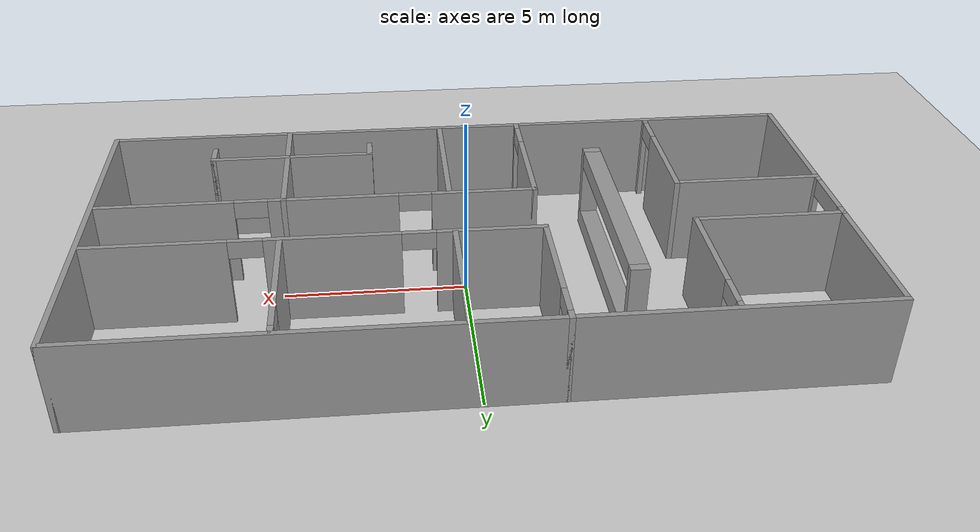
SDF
<sdf version="1.7">
 <world name="default">
  <light name="sun" type="directional">
   <pose>0 0 10 0 -0 0</pose>
   <diffuse>0.8 0.8 0.8 1</diffuse>
   <specular>0.2 0.2 0.2 1</specular>
   <attenuation>
    <range>1000</range>
    <constant>0.9</constant>
    <linear>0.01</linear>
    <quadratic>0.001</quadratic>
   </attenuation>
   <direction>-0.5 0.1 -0.9</direction>
   <spot><inner_angle>0</inner_angle><outer_angle>0</outer_angle><falloff>0</falloff></spot>
  </light>
  <model name="ground_plane">
   <static>1</static>
   <link name="link">
    <collision name="collision">
     <geometry><plane><normal>0 0 1</normal><size>100 100</size></plane></geometry>
     <surface>
      <contact><collide_bitmask>65535</collide_bitmask></contact>
      <friction><ode><mu>100</mu><mu2>50</mu2></ode></friction>
     </surface>
    </collision>
    <visual name="visual">
     <cast_shadows>0</cast_shadows>
     <geometry><plane><normal>0 0 1</normal><size>100 100</size></plane></geometry>
     <material>
      <script><uri>file://media/materials/scripts/gazebo.material</uri><name>Gazebo/Grey</name></script>
     </material>
    </visual>
   </link>
  </model>
  <gravity>0 0 -9.8</gravity>
  <magnetic_field>6e-06 2.3e-05 -4.2e-05</magnetic_field>
  <atmosphere type="adiabatic"/>
  <physics type="ode">
   <max_step_size>0.001</max_step_size>
   <real_time_factor>1</real_time_factor>
   <real_time_update_rate>1000</real_time_update_rate>
  </physics>
  <scene><ambient>0.4 0.4 0.4 1</ambient><background>0.7 0.7 0.7 1</background><shadows>1</shadows></scene>
  <spherical_coordinates>
   <surface_model>EARTH_WGS84</surface_model>
   <latitude_deg>0</latitude_deg>
   <longitude_deg>0</longitude_deg>
   <elevation>0</elevation>
   <heading_deg>0</heading_deg>
  </spherical_coordinates>
  <model name="Office">
   <link name="Wall_13">
    <collision name="Wall_13_Collision">
     <geometry><box><size>20.15 0.15 2.5</size></box></geometry>
     <pose>0 0 1.25 0 -0 0</pose>
    </collision>
    <visual name="Wall_13_Visual">
     <pose>0 0 1.25 0 -0 0</pose>
     <geometry><box><size>20.15 0.15 2.5</size></box></geometry>
     <material>
      <script><uri>file://media/materials/scripts/gazebo.material</uri><name>Gazebo/Grey</name></script>
      <ambient>1 1 1 1</ambient>
     </material>
     <meta><layer>0</layer></meta>
    </visual>
    <pose>0 5 0 0 -0 0</pose>
   </link>
   <link name="Wall_14">
    <collision name="Wall_14_Collision">
     <geometry><box><size>10.15 0.15 2.5</size></box></geometry>
     <pose>0 0 1.25 0 -0 0</pose>
    </collision>
    <visual name="Wall_14_Visual">
     <pose>0 0 1.25 0 -0 0</pose>
     <geometry><box><size>10.15 0.15 2.5</size></box></geometry>
     <material>
      <script><uri>file://media/materials/scripts/gazebo.material</uri><name>Gazebo/Grey</name></script>
      <ambient>1 1 1 1</ambient>
     </material>
     <meta><layer>0</layer></meta>
    </visual>
    <pose>10 0 0 0 -0 -1.5708</pose>
   </link>
   <link name="Wall_15">
    <collision name="Wall_15_Collision">
     <geometry><box><size>20.15 0.15 2.5</size></box></geometry>
     <pose>0 0 1.25 0 -0 0</pose>
    </collision>
    <visual name="Wall_15_Visual">
     <pose>0 0 1.25 0 -0 0</pose>
     <geometry><box><size>20.15 0.15 2.5</size></box></geometry>
     <material>
      <script><uri>file://media/materials/scripts/gazebo.material</uri><name>Gazebo/Grey</name></script>
      <ambient>1 1 1 1</ambient>
     </material>
     <meta><layer>0</layer></meta>
    </visual>
    <pose>0 -5 0 0 -0 3.14159</pose>
   </link>
   <link name="Wall_16">
    <pose>-10 -0.075 0 0 -0 1.5708</pose>
    <visual name="Wall_16_Visual_0">
     <pose>-2.8375 0 1.25 0 -0 0</pose>
     <geometry><box><size>4.325 0.15 2.5</size></box></geometry>
     <material>
      <script><uri>file://media/materials/scripts/gazebo.material</uri><name>Gazebo/Grey</name></script>
      <ambient>1 1 1 1</ambient>
     </material>
     <meta><layer>0</layer></meta>
    </visual>
    <collision name="Wall_16_Collision_0">
     <geometry><box><size>4.325 0.15 2.5</size></box></geometry>
     <pose>-2.8375 0 1.25 0 -0 0</pose>
    </collision>
    <visual name="Wall_16_Visual_1">
     <pose>2.9125 0 1.25 0 -0 0</pose>
     <geometry><box><size>4.175 0.15 2.5</size></box></geometry>
     <material>
      <script><uri>file://media/materials/scripts/gazebo.material</uri><name>Gazebo/Grey</name></script>
      <ambient>1 1 1 1</ambient>
     </material>
     <meta><layer>0</layer></meta>
    </visual>
    <collision name="Wall_16_Collision_1">
     <geometry><box><size>4.175 0.15 2.5</size></box></geometry>
     <pose>2.9125 0 1.25 0 -0 0</pose>
    </collision>
    <visual name="Wall_16_Visual_2">
     <pose>0.075 0 2.25 0 -0 0</pose>
     <geometry><box><size>1.5 0.15 0.5</size></box></geometry>
     <material>
      <script><uri>file://media/materials/scripts/gazebo.material</uri><name>Gazebo/Grey</name></script>
      <ambient>1 1 1 1</ambient>
     </material>
     <meta><layer>0</layer></meta>
    </visual>
    <collision name="Wall_16_Collision_2">
     <geometry><box><size>1.5 0.15 0.5</size></box></geometry>
     <pose>0.075 0 2.25 0 -0 0</pose>
    </collision>
   </link>
   <link name="Wall_18">
    <collision name="Wall_18_Collision">
     <geometry><box><size>4.15 0.15 2.5</size></box></geometry>
     <pose>0 0 1.25 0 -0 0</pose>
    </collision>
    <visual name="Wall_18_Visual">
     <pose>0 0 1.25 0 -0 0</pose>
     <geometry><box><size>4.15 0.15 2.5</size></box></geometry>
     <material>
      <script><uri>file://media/materials/scripts/gazebo.material</uri><name>Gazebo/Grey</name></script>
      <ambient>1 1 1 1</ambient>
     </material>
     <meta><layer>0</layer></meta>
    </visual>
    <pose>-8 1 0 0 -0 0</pose>
   </link>
   <link name="Wall_19">
    <pose>-6 2.925 0 0 -0 1.5708</pose>
    <visual name="Wall_19_Visual_0">
     <pose>-0.5375 0 1.25 0 -0 0</pose>
     <geometry><box><size>2.925 0.15 2.5</size></box></geometry>
     <material>
      <script><uri>file://media/materials/scripts/gazebo.material</uri><name>Gazebo/Grey</name></script>
      <ambient>1 1 1 1</ambient>
     </material>
     <meta><layer>0</layer></meta>
    </visual>
    <collision name="Wall_19_Collision_0">
     <geometry><box><size>2.925 0.15 2.5</size></box></geometry>
     <pose>-0.5375 0 1.25 0 -0 0</pose>
    </collision>
    <visual name="Wall_19_Visual_1">
     <pose>1.9125 0 1.25 0 -0 0</pose>
     <geometry><box><size>0.175 0.15 2.5</size></box></geometry>
     <material>
      <script><uri>file://media/materials/scripts/gazebo.material</uri><name>Gazebo/Grey</name></script>
      <ambient>1 1 1 1</ambient>
     </material>
     <meta><layer>0</layer></meta>
    </visual>
    <collision name="Wall_19_Collision_1">
     <geometry><box><size>0.175 0.15 2.5</size></box></geometry>
     <pose>1.9125 0 1.25 0 -0 0</pose>
    </collision>
    <visual name="Wall_19_Visual_2">
     <pose>1.375 0 2.25 0 -0 0</pose>
     <geometry><box><size>0.9 0.15 0.5</size></box></geometry>
     <material>
      <script><uri>file://media/materials/scripts/gazebo.material</uri><name>Gazebo/Grey</name></script>
      <ambient>1 1 1 1</ambient>
     </material>
     <meta><layer>0</layer></meta>
    </visual>
    <collision name="Wall_19_Collision_2">
     <geometry><box><size>0.9 0.15 0.5</size></box></geometry>
     <pose>1.375 0 2.25 0 -0 0</pose>
    </collision>
   </link>
   <link name="Wall_21">
    <collision name="Wall_21_Collision">
     <geometry><box><size>4.15 0.15 2.5</size></box></geometry>
     <pose>0 0 1.25 0 -0 0</pose>
    </collision>
    <visual name="Wall_21_Visual">
     <pose>0 0 1.25 0 -0 0</pose>
     <geometry><box><size>4.15 0.15 2.5</size></box></geometry>
     <material>
      <script><uri>file://media/materials/scripts/gazebo.material</uri><name>Gazebo/Grey</name></script>
      <ambient>1 1 1 1</ambient>
     </material>
     <meta><layer>0</layer></meta>
    </visual>
    <pose>-8 -1 0 0 -0 0</pose>
   </link>
   <link name="Wall_22">
    <pose>-6 -2.925 0 0 -0 -1.5708</pose>
    <visual name="Wall_22_Visual_0">
     <pose>-0.539066 0 1.25 0 -0 0</pose>
     <geometry><box><size>2.92187 0.15 2.5</size></box></geometry>
     <material>
      <script><uri>file://media/materials/scripts/gazebo.material</uri><name>Gazebo/Grey</name></script>
      <ambient>1 1 1 1</ambient>
     </material>
     <meta><layer>0</layer></meta>
    </visual>
    <collision name="Wall_22_Collision_0">
     <geometry><box><size>2.92187 0.15 2.5</size></box></geometry>
     <pose>-0.539066 0 1.25 0 -0 0</pose>
    </collision>
    <visual name="Wall_22_Visual_1">
     <pose>1.91093 0 1.25 0 -0 0</pose>
     <geometry><box><size>0.178131 0.15 2.5</size></box></geometry>
     <material>
      <script><uri>file://media/materials/scripts/gazebo.material</uri><name>Gazebo/Grey</name></script>
      <ambient>1 1 1 1</ambient>
     </material>
     <meta><layer>0</layer></meta>
    </visual>
    <collision name="Wall_22_Collision_1">
     <geometry><box><size>0.178131 0.15 2.5</size></box></geometry>
     <pose>1.91093 0 1.25 0 -0 0</pose>
    </collision>
    <visual name="Wall_22_Visual_2">
     <pose>1.37187 0 2.25 0 -0 0</pose>
     <geometry><box><size>0.9 0.15 0.5</size></box></geometry>
     <material>
      <script><uri>file://media/materials/scripts/gazebo.material</uri><name>Gazebo/Grey</name></script>
      <ambient>1 1 1 1</ambient>
     </material>
     <meta><layer>0</layer></meta>
    </visual>
    <collision name="Wall_22_Collision_2">
     <geometry><box><size>0.9 0.15 0.5</size></box></geometry>
     <pose>1.37187 0 2.25 0 -0 0</pose>
    </collision>
   </link>
   <link name="Wall_24">
    <pose>-4 0 0 0 -0 -1.5708</pose>
    <visual name="Wall_24_Visual_0">
     <pose>-3.125 0 1.25 0 -0 0</pose>
     <geometry><box><size>0.25 0.5 2.5</size></box></geometry>
     <material>
      <script><uri>file://media/materials/scripts/gazebo.material</uri><name>Gazebo/Grey</name></script>
      <ambient>1 1 1 1</ambient>
     </material>
     <meta><layer>0</layer></meta>
    </visual>
    <collision name="Wall_24_Collision_0">
     <geometry><box><size>0.25 0.5 2.5</size></box></geometry>
     <pose>-3.125 0 1.25 0 -0 0</pose>
    </collision>
    <visual name="Wall_24_Visual_1">
     <pose>0.125 0 0.25 0 -0 0</pose>
     <geometry><box><size>6.25 0.5 0.5</size></box></geometry>
     <material>
      <script><uri>file://media/materials/scripts/gazebo.material</uri><name>Gazebo/Grey</name></script>
      <ambient>1 1 1 1</ambient>
     </material>
     <meta><layer>0</layer></meta>
    </visual>
    <collision name="Wall_24_Collision_1">
     <geometry><box><size>6.25 0.5 0.5</size></box></geometry>
     <pose>0.125 0 0.25 0 -0 0</pose>
    </collision>
    <visual name="Wall_24_Visual_2">
     <pose>3.125 0 1.5 0 -0 0</pose>
     <geometry><box><size>0.25 0.5 2</size></box></geometry>
     <material>
      <script><uri>file://media/materials/scripts/gazebo.material</uri><name>Gazebo/Grey</name></script>
      <ambient>1 1 1 1</ambient>
     </material>
     <meta><layer>0</layer></meta>
    </visual>
    <collision name="Wall_24_Collision_2">
     <geometry><box><size>0.25 0.5 2</size></box></geometry>
     <pose>3.125 0 1.5 0 -0 0</pose>
    </collision>
    <visual name="Wall_24_Visual_3">
     <pose>0 0 2.25 0 -0 0</pose>
     <geometry><box><size>6 0.5 0.5</size></box></geometry>
     <material>
      <script><uri>file://media/materials/scripts/gazebo.material</uri><name>Gazebo/Grey</name></script>
      <ambient>1 1 1 1</ambient>
     </material>
     <meta><layer>0</layer></meta>
    </visual>
    <collision name="Wall_24_Collision_3">
     <geometry><box><size>6 0.5 0.5</size></box></geometry>
     <pose>0 0 2.25 0 -0 0</pose>
    </collision>
   </link>
   <link name="Wall_29">
    <pose>-2 3 0 0 -0 -1.5708</pose>
    <visual name="Wall_29_Visual_0">
     <pose>-1.9125 0 1.25 0 -0 0</pose>
     <geometry><box><size>0.325 0.15 2.5</size></box></geometry>
     <material>
      <script><uri>file://media/materials/scripts/gazebo.material</uri><name>Gazebo/Grey</name></script>
      <ambient>1 1 1 1</ambient>
     </material>
     <meta><layer>0</layer></meta>
    </visual>
    <collision name="Wall_29_Collision_0">
     <geometry><box><size>0.325 0.15 2.5</size></box></geometry>
     <pose>-1.9125 0 1.25 0 -0 0</pose>
    </collision>
    <visual name="Wall_29_Visual_1">
     <pose>0.6125 0 1.25 0 -0 0</pose>
     <geometry><box><size>2.925 0.15 2.5</size></box></geometry>
     <material>
      <script><uri>file://media/materials/scripts/gazebo.material</uri><name>Gazebo/Grey</name></script>
      <ambient>1 1 1 1</ambient>
     </material>
     <meta><layer>0</layer></meta>
    </visual>
    <collision name="Wall_29_Collision_1">
     <geometry><box><size>2.925 0.15 2.5</size></box></geometry>
     <pose>0.6125 0 1.25 0 -0 0</pose>
    </collision>
    <visual name="Wall_29_Visual_2">
     <pose>-1.3 0 2.25 0 -0 0</pose>
     <geometry><box><size>0.9 0.15 0.5</size></box></geometry>
     <material>
      <script><uri>file://media/materials/scripts/gazebo.material</uri><name>Gazebo/Grey</name></script>
      <ambient>1 1 1 1</ambient>
     </material>
     <meta><layer>0</layer></meta>
    </visual>
    <collision name="Wall_29_Collision_2">
     <geometry><box><size>0.9 0.15 0.5</size></box></geometry>
     <pose>-1.3 0 2.25 0 -0 0</pose>
    </collision>
   </link>
   <link name="Wall_30">
    <pose>3.925 1 0 0 -0 0</pose>
    <visual name="Wall_30_Visual_0">
     <pose>-4.5375 0 1.25 0 -0 0</pose>
     <geometry><box><size>2.925 0.15 2.5</size></box></geometry>
     <material>
      <script><uri>file://media/materials/scripts/gazebo.material</uri><name>Gazebo/Grey</name></script>
      <ambient>1 1 1 1</ambient>
     </material>
     <meta><layer>0</layer></meta>
    </visual>
    <collision name="Wall_30_Collision_0">
     <geometry><box><size>2.925 0.15 2.5</size></box></geometry>
     <pose>-4.5375 0 1.25 0 -0 0</pose>
    </collision>
    <visual name="Wall_30_Visual_1">
     <pose>-0.401223 0 1.25 0 -0 0</pose>
     <geometry><box><size>3.54755 0.15 2.5</size></box></geometry>
     <material>
      <script><uri>file://media/materials/scripts/gazebo.material</uri><name>Gazebo/Grey</name></script>
      <ambient>1 1 1 1</ambient>
     </material>
     <meta><layer>0</layer></meta>
    </visual>
    <collision name="Wall_30_Collision_1">
     <geometry><box><size>3.54755 0.15 2.5</size></box></geometry>
     <pose>-0.401223 0 1.25 0 -0 0</pose>
    </collision>
    <visual name="Wall_30_Visual_2">
     <pose>4.13628 0 1.25 0 -0 0</pose>
     <geometry><box><size>3.72745 0.15 2.5</size></box></geometry>
     <material>
      <script><uri>file://media/materials/scripts/gazebo.material</uri><name>Gazebo/Grey</name></script>
      <ambient>1 1 1 1</ambient>
     </material>
     <meta><layer>0</layer></meta>
    </visual>
    <collision name="Wall_30_Collision_2">
     <geometry><box><size>3.72745 0.15 2.5</size></box></geometry>
     <pose>4.13628 0 1.25 0 -0 0</pose>
    </collision>
    <visual name="Wall_30_Visual_3">
     <pose>-2.625 0 2.25 0 -0 0</pose>
     <geometry><box><size>0.9 0.15 0.5</size></box></geometry>
     <material>
      <script><uri>file://media/materials/scripts/gazebo.material</uri><name>Gazebo/Grey</name></script>
      <ambient>1 1 1 1</ambient>
     </material>
     <meta><layer>0</layer></meta>
    </visual>
    <collision name="Wall_30_Collision_3">
     <geometry><box><size>0.9 0.15 0.5</size></box></geometry>
     <pose>-2.625 0 2.25 0 -0 0</pose>
    </collision>
    <visual name="Wall_30_Visual_4">
     <pose>1.82255 0 2.25 0 -0 0</pose>
     <geometry><box><size>0.9 0.15 0.5</size></box></geometry>
     <material>
      <script><uri>file://media/materials/scripts/gazebo.material</uri><name>Gazebo/Grey</name></script>
      <ambient>1 1 1 1</ambient>
     </material>
     <meta><layer>0</layer></meta>
    </visual>
    <collision name="Wall_30_Collision_4">
     <geometry><box><size>0.9 0.15 0.5</size></box></geometry>
     <pose>1.82255 0 2.25 0 -0 0</pose>
    </collision>
   </link>
   <link name="Wall_32">
    <pose>-2 -3 0 0 -0 1.5708</pose>
    <visual name="Wall_32_Visual_0">
     <pose>-1.9125 0 1.25 0 -0 0</pose>
     <geometry><box><size>0.325 0.15 2.5</size></box></geometry>
     <material>
      <script><uri>file://media/materials/scripts/gazebo.material</uri><name>Gazebo/Grey</name></script>
      <ambient>1 1 1 1</ambient>
     </material>
     <meta><layer>0</layer></meta>
    </visual>
    <collision name="Wall_32_Collision_0">
     <geometry><box><size>0.325 0.15 2.5</size></box></geometry>
     <pose>-1.9125 0 1.25 0 -0 0</pose>
    </collision>
    <visual name="Wall_32_Visual_1">
     <pose>0.6125 0 1.25 0 -0 0</pose>
     <geometry><box><size>2.925 0.15 2.5</size></box></geometry>
     <material>
      <script><uri>file://media/materials/scripts/gazebo.material</uri><name>Gazebo/Grey</name></script>
      <ambient>1 1 1 1</ambient>
     </material>
     <meta><layer>0</layer></meta>
    </visual>
    <collision name="Wall_32_Collision_1">
     <geometry><box><size>2.925 0.15 2.5</size></box></geometry>
     <pose>0.6125 0 1.25 0 -0 0</pose>
    </collision>
    <visual name="Wall_32_Visual_2">
     <pose>-1.3 0 2.25 0 -0 0</pose>
     <geometry><box><size>0.9 0.15 0.5</size></box></geometry>
     <material>
      <script><uri>file://media/materials/scripts/gazebo.material</uri><name>Gazebo/Grey</name></script>
      <ambient>1 1 1 1</ambient>
     </material>
     <meta><layer>0</layer></meta>
    </visual>
    <collision name="Wall_32_Collision_2">
     <geometry><box><size>0.9 0.15 0.5</size></box></geometry>
     <pose>-1.3 0 2.25 0 -0 0</pose>
    </collision>
   </link>
   <link name="Wall_33">
    <pose>3.925 -1 0 0 -0 0</pose>
    <visual name="Wall_33_Visual_0">
     <pose>-4.5375 0 1.25 0 -0 0</pose>
     <geometry><box><size>2.925 0.15 2.5</size></box></geometry>
     <material>
      <script><uri>file://media/materials/scripts/gazebo.material</uri><name>Gazebo/Grey</name></script>
      <ambient>1 1 1 1</ambient>
     </material>
     <meta><layer>0</layer></meta>
    </visual>
    <collision name="Wall_33_Collision_0">
     <geometry><box><size>2.925 0.15 2.5</size></box></geometry>
     <pose>-4.5375 0 1.25 0 -0 0</pose>
    </collision>
    <visual name="Wall_33_Visual_1">
     <pose>-0.4 0 1.25 0 -0 0</pose>
     <geometry><box><size>3.55 0.15 2.5</size></box></geometry>
     <material>
      <script><uri>file://media/materials/scripts/gazebo.material</uri><name>Gazebo/Grey</name></script>
      <ambient>1 1 1 1</ambient>
     </material>
     <meta><layer>0</layer></meta>
    </visual>
    <collision name="Wall_33_Collision_1">
     <geometry><box><size>3.55 0.15 2.5</size></box></geometry>
     <pose>-0.4 0 1.25 0 -0 0</pose>
    </collision>
    <visual name="Wall_33_Visual_2">
     <pose>4.1375 0 1.25 0 -0 0</pose>
     <geometry><box><size>3.725 0.15 2.5</size></box></geometry>
     <material>
      <script><uri>file://media/materials/scripts/gazebo.material</uri><name>Gazebo/Grey</name></script>
      <ambient>1 1 1 1</ambient>
     </material>
     <meta><layer>0</layer></meta>
    </visual>
    <collision name="Wall_33_Collision_2">
     <geometry><box><size>3.725 0.15 2.5</size></box></geometry>
     <pose>4.1375 0 1.25 0 -0 0</pose>
    </collision>
    <visual name="Wall_33_Visual_3">
     <pose>-2.625 0 2.25 0 -0 0</pose>
     <geometry><box><size>0.9 0.15 0.5</size></box></geometry>
     <material>
      <script><uri>file://media/materials/scripts/gazebo.material</uri><name>Gazebo/Grey</name></script>
      <ambient>1 1 1 1</ambient>
     </material>
     <meta><layer>0</layer></meta>
    </visual>
    <collision name="Wall_33_Collision_3">
     <geometry><box><size>0.9 0.15 0.5</size></box></geometry>
     <pose>-2.625 0 2.25 0 -0 0</pose>
    </collision>
    <visual name="Wall_33_Visual_4">
     <pose>1.825 0 2.25 0 -0 0</pose>
     <geometry><box><size>0.9 0.15 0.5</size></box></geometry>
     <material>
      <script><uri>file://media/materials/scripts/gazebo.material</uri><name>Gazebo/Grey</name></script>
      <ambient>1 1 1 1</ambient>
     </material>
     <meta><layer>0</layer></meta>
    </visual>
    <collision name="Wall_33_Collision_4">
     <geometry><box><size>0.9 0.15 0.5</size></box></geometry>
     <pose>1.825 0 2.25 0 -0 0</pose>
    </collision>
   </link>
   <link name="Wall_35">
    <collision name="Wall_35_Collision">
     <geometry><box><size>4 0.15 2.5</size></box></geometry>
     <pose>0 0 1.25 0 -0 0</pose>
    </collision>
    <visual name="Wall_35_Visual">
     <pose>0 0 1.25 0 -0 0</pose>
     <geometry><box><size>4 0.15 2.5</size></box></geometry>
     <material>
      <script><uri>file://media/materials/scripts/gazebo.material</uri><name>Gazebo/Grey</name></script>
      <ambient>1 1 1 1</ambient>
     </material>
     <meta><layer>0</layer></meta>
    </visual>
    <pose>0.360614 3.01635 0 0 -0 -1.5708</pose>
   </link>
   <link name="Wall_37">
    <collision name="Wall_37_Collision">
     <geometry><box><size>4 0.15 2.5</size></box></geometry>
     <pose>0 0 1.25 0 -0 0</pose>
    </collision>
    <visual name="Wall_37_Visual">
     <pose>0 0 1.25 0 -0 0</pose>
     <geometry><box><size>4 0.15 2.5</size></box></geometry>
     <material>
      <script><uri>file://media/materials/scripts/gazebo.material</uri><name>Gazebo/Grey</name></script>
      <ambient>1 1 1 1</ambient>
     </material>
     <meta><layer>0</layer></meta>
    </visual>
    <pose>0.360614 -2.93365 0 0 -0 -1.5708</pose>
   </link>
   <link name="Wall_39">
    <pose>4.87305 3.06882 0 0 -0 -1.5708</pose>
    <visual name="Wall_39_Visual_0">
     <pose>-1.82354 0 1.25 0 -0 0</pose>
     <geometry><box><size>0.352927 0.15 2.5</size></box></geometry>
     <material>
      <script><uri>file://media/materials/scripts/gazebo.material</uri><name>Gazebo/Grey</name></script>
      <ambient>1 1 1 1</ambient>
     </material>
     <meta><layer>0</layer></meta>
    </visual>
    <collision name="Wall_39_Collision_0">
     <geometry><box><size>0.352927 0.15 2.5</size></box></geometry>
     <pose>-1.82354 0 1.25 0 -0 0</pose>
    </collision>
    <visual name="Wall_39_Visual_1">
     <pose>0.626463 0 1.25 0 -0 0</pose>
     <geometry><box><size>2.74707 0.15 2.5</size></box></geometry>
     <material>
      <script><uri>file://media/materials/scripts/gazebo.material</uri><name>Gazebo/Grey</name></script>
      <ambient>1 1 1 1</ambient>
     </material>
     <meta><layer>0</layer></meta>
    </visual>
    <collision name="Wall_39_Collision_1">
     <geometry><box><size>2.74707 0.15 2.5</size></box></geometry>
     <pose>0.626463 0 1.25 0 -0 0</pose>
    </collision>
    <visual name="Wall_39_Visual_2">
     <pose>-1.19707 0 2.25 0 -0 0</pose>
     <geometry><box><size>0.9 0.15 0.5</size></box></geometry>
     <material>
      <script><uri>file://media/materials/scripts/gazebo.material</uri><name>Gazebo/Grey</name></script>
      <ambient>1 1 1 1</ambient>
     </material>
     <meta><layer>0</layer></meta>
    </visual>
    <collision name="Wall_39_Collision_2">
     <geometry><box><size>0.9 0.15 0.5</size></box></geometry>
     <pose>-1.19707 0 2.25 0 -0 0</pose>
    </collision>
   </link>
   <link name="Wall_41">
    <collision name="Wall_41_Collision">
     <geometry><box><size>4.15 0.15 2.5</size></box></geometry>
     <pose>0 0 1.25 0 -0 0</pose>
    </collision>
    <visual name="Wall_41_Visual">
     <pose>0 0 1.25 0 -0 0</pose>
     <geometry><box><size>4.15 0.15 2.5</size></box></geometry>
     <material>
      <script><uri>file://media/materials/scripts/gazebo.material</uri><name>Gazebo/Grey</name></script>
      <ambient>1 1 1 1</ambient>
     </material>
     <meta><layer>0</layer></meta>
    </visual>
    <pose>4.873 -3 0 0 -0 -1.5708</pose>
   </link>
   <link name="Wall_43">
    <collision name="Wall_43_Collision">
     <geometry><box><size>0.75 0.15 2.5</size></box></geometry>
     <pose>0 0 1.25 0 -0 0</pose>
    </collision>
    <visual name="Wall_43_Visual">
     <pose>0 0 1.25 0 -0 0</pose>
     <geometry><box><size>0.75 0.15 2.5</size></box></geometry>
     <material>
      <script><uri>file://media/materials/scripts/gazebo.material</uri><name>Gazebo/Grey</name></script>
      <ambient>1 1 1 1</ambient>
     </material>
     <meta><layer>0</layer></meta>
    </visual>
    <pose>2.5 -3.8 0 0 -0 1.5708</pose>
   </link>
   <link name="Wall_44">
    <collision name="Wall_44_Collision">
     <geometry><box><size>4.65 0.15 2.5</size></box></geometry>
     <pose>0 0 1.25 0 -0 0</pose>
    </collision>
    <visual name="Wall_44_Visual">
     <pose>0 0 1.25 0 -0 0</pose>
     <geometry><box><size>4.65 0.15 2.5</size></box></geometry>
     <material>
      <script><uri>file://media/materials/scripts/gazebo.material</uri><name>Gazebo/Grey</name></script>
      <ambient>1 1 1 1</ambient>
     </material>
     <meta><layer>0</layer></meta>
    </visual>
    <pose>4.75 -3.5 0 0 -0 0</pose>
   </link>
   <link name="Wall_45">
    <collision name="Wall_45_Collision">
     <geometry><box><size>0.75 0.15 2.5</size></box></geometry>
     <pose>0 0 1.25 0 -0 0</pose>
    </collision>
    <visual name="Wall_45_Visual">
     <pose>0 0 1.25 0 -0 0</pose>
     <geometry><box><size>0.75 0.15 2.5</size></box></geometry>
     <material>
      <script><uri>file://media/materials/scripts/gazebo.material</uri><name>Gazebo/Grey</name></script>
      <ambient>1 1 1 1</ambient>
     </material>
     <meta><layer>0</layer></meta>
    </visual>
    <pose>7 -3.8 0 0 -0 -1.5708</pose>
   </link>
   <static>1</static>
  </model>
 </world>
</sdf>
